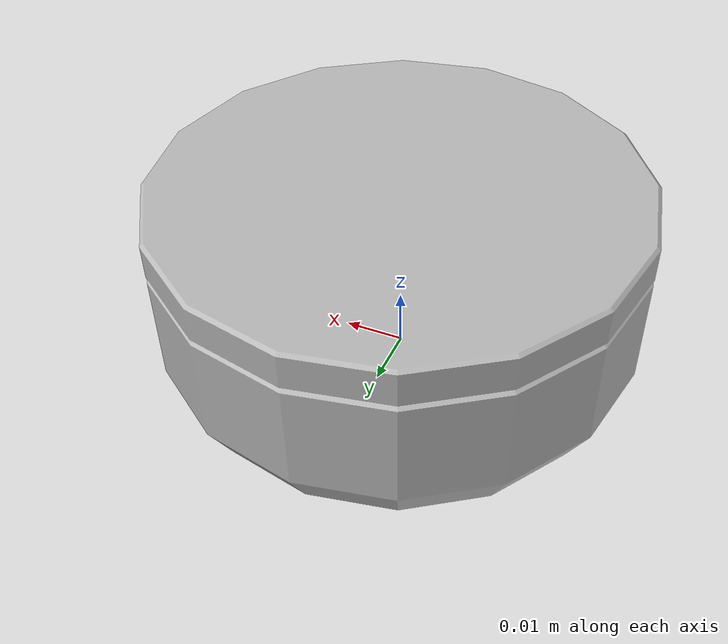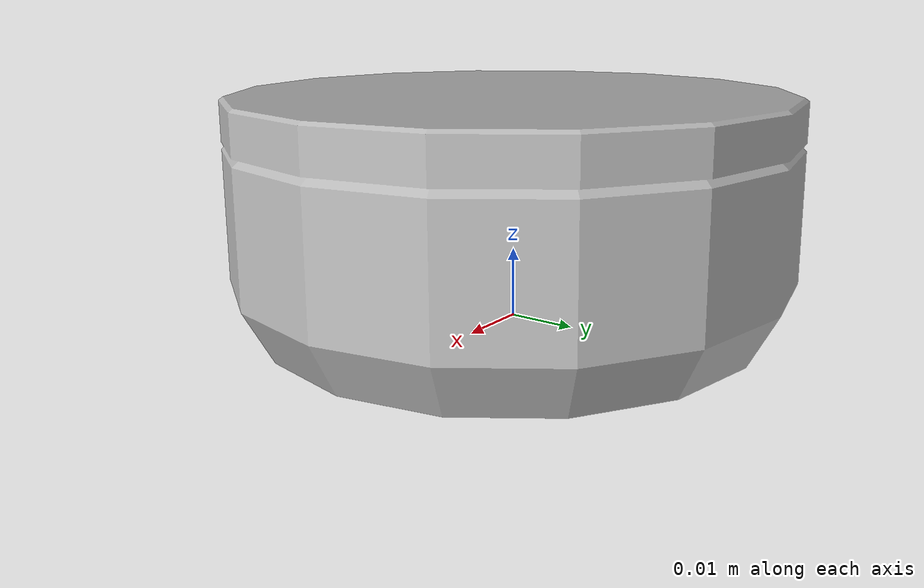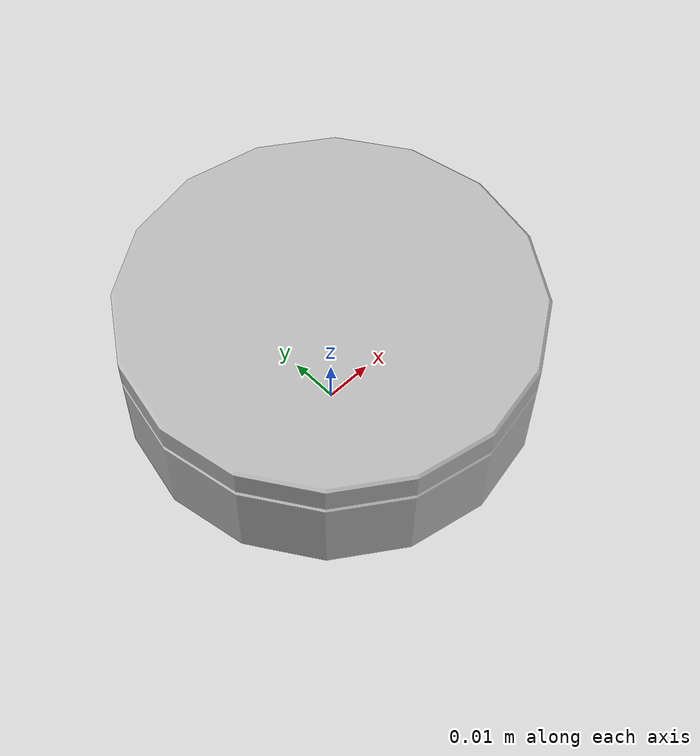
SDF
<?xml version='1.0'?>
<sdf version="1.4">
	<model name="lotion">
		<static>1</static>
		<link name="link">
			<visual name="mesh">
				<geometry>
					<mesh>
						<uri>model://meshes/lotion.dae</uri>
					</mesh>
				</geometry>
			</visual>
			<collision name="collider">
				<pose>0 0 0.015 0 0 0</pose>
				<geometry>
					<cylinder>
						<radius>0.04</radius>
						<length>0.03</length>
					</cylinder>
				</geometry>
			</collision>
		</link>
	</model>
</sdf>
